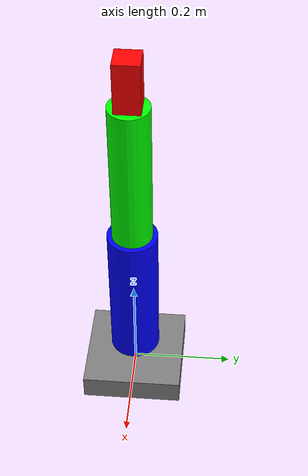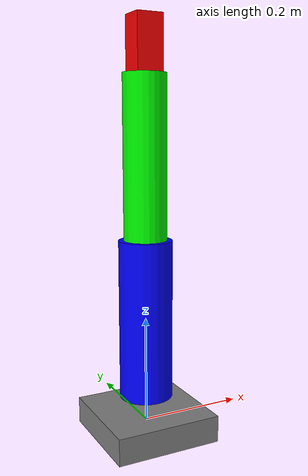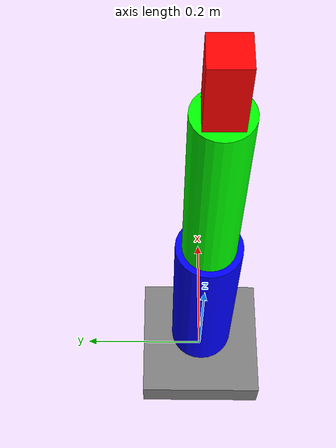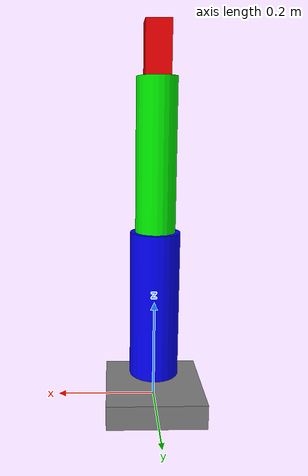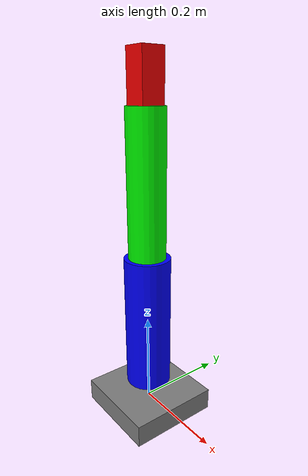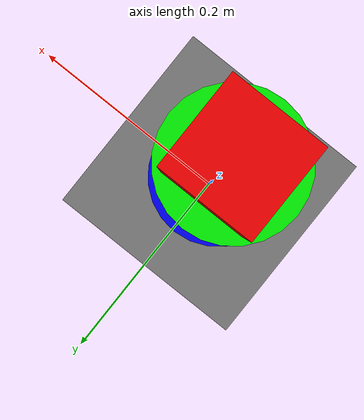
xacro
<?xml version="1.0"?>
<robot xmlns:xacro="http://www.ros.org/wiki/xacro" name="RRR_arm">
    <xacro:arg name="initial_positions_file" default="initial_positions.yaml" />

    <!-- Import RRR_arm urdf file -->
    <xacro:include filename="$(find robot_controller)/urdf/robot.urdf" />

    <!-- Import control_xacro -->
    <xacro:include filename="RRR_arm.ros2_control.xacro" />

    <xacro:RRR_arm_ros2_control name="FakeSystem" initial_positions_file="$(arg initial_positions_file)"/>

</robot>

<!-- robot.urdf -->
<robot name="RRR_arm">

  <link name="base_link">
    <visual>
      <geometry>
        <box size="0.2 0.2 0.05"/>
      </geometry>
      <material name="gray"><color rgba="0.5 0.5 0.5 1"/></material>
    </visual>
    <collision>
      <geometry><box size="0.2 0.2 0.05"/></geometry>
    </collision>
  </link>

  <joint name="joint1" type="revolute">
    <parent link="base_link"/>
    <child link="link1"/>
    <origin xyz="0 0 0.05" rpy="0 0 0"/>
    <axis xyz="0 0 1"/>
    <limit lower="-3.14" upper="3.14" effort="10.0" velocity="1.0"/>
  </joint>

  <link name="link1">
    <visual>
      <origin xyz="0 0 0.15" rpy="0 0 0"/> <geometry><cylinder length="0.3" radius="0.05"/></geometry>
      <material name="blue"><color rgba="0 0 1 1"/></material>
    </visual>
    <collision>
       <origin xyz="0 0 0.15" rpy="0 0 0"/>
       <geometry><cylinder length="0.3" radius="0.05"/></geometry>
    </collision>
  </link>

  <joint name="joint2" type="revolute">
    <parent link="link1"/>
    <child link="link2"/>
    <origin xyz="0 0 0.3" rpy="0 0 0"/>
    <axis xyz="0 1 0"/> <limit lower="-1.57" upper="1.57" effort="10.0" velocity="1.0"/>
  </joint>

  <link name="link2">
    <visual>
      <origin xyz="0 0 0.15" rpy="0 0 0"/>
      <geometry><cylinder length="0.3" radius="0.04"/></geometry>
      <material name="green"><color rgba="0 1 0 1"/></material>
    </visual>
    <collision>
      <origin xyz="0 0 0.15" rpy="0 0 0"/>
      <geometry><cylinder length="0.3" radius="0.04"/></geometry>
    </collision>
  </link>

  <joint name="joint3" type="revolute">
    <parent link="link2"/>
    <child link="end_effector"/>
    <origin xyz="0 0 0.3" rpy="0 0 0"/>
    <axis xyz="0 1 0"/>
    <limit lower="-1.57" upper="1.57" effort="10.0" velocity="1.0"/>
  </joint>

  <link name="end_effector">
    <visual>
      <origin xyz="0 0 0.05" rpy="0 0 0"/>
      <geometry><box size="0.05 0.05 0.1"/></geometry>
      <material name="red"><color rgba="1 0 0 1"/></material>
    </visual>
    <collision>
      <origin xyz="0 0 0.05" rpy="0 0 0"/>
      <geometry><box size="0.05 0.05 0.1"/></geometry>
    </collision>
  </link>

</robot>
